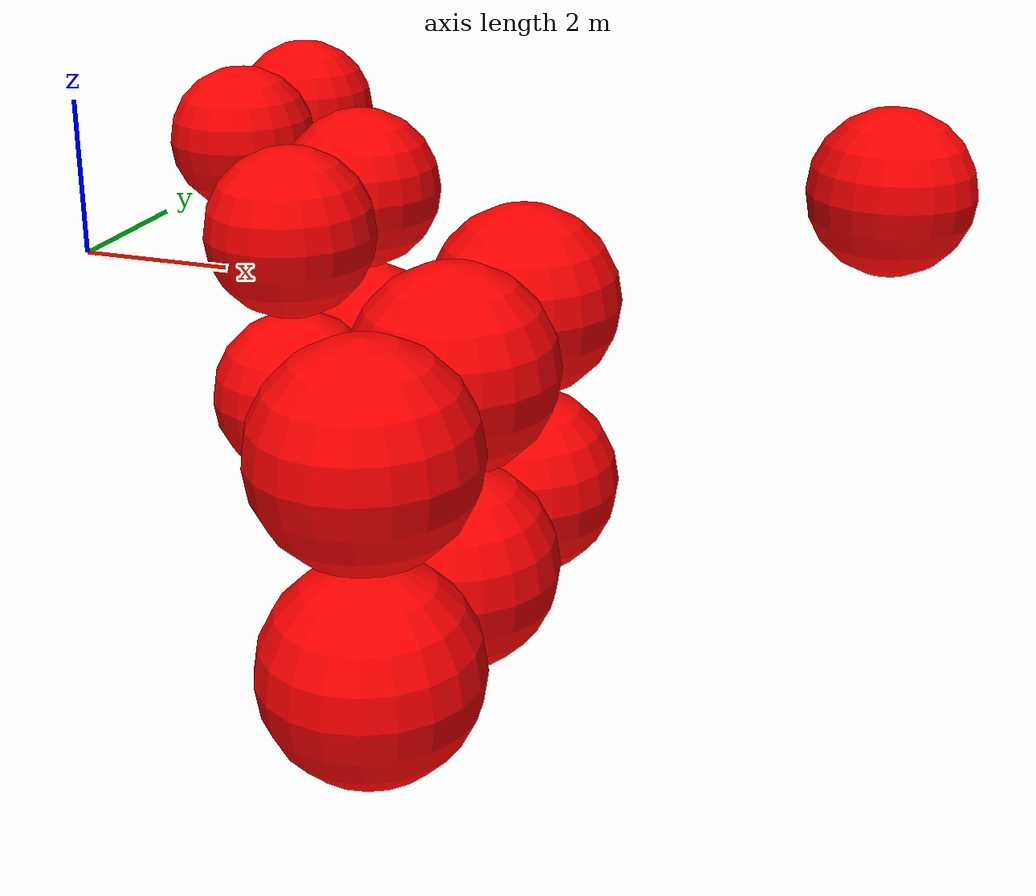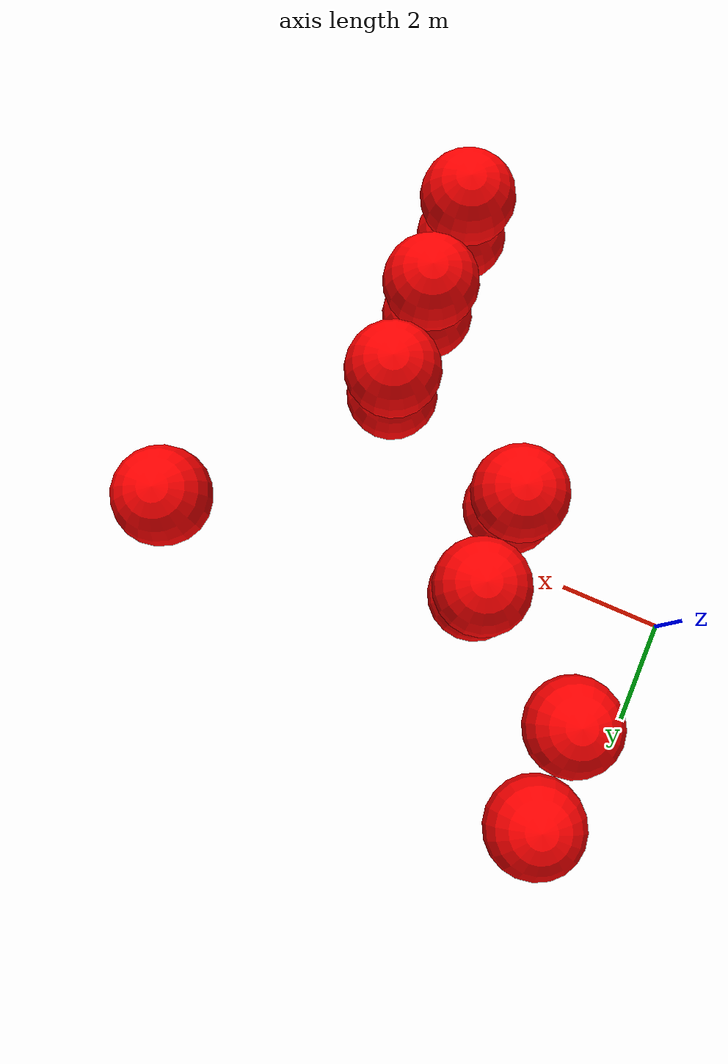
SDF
<sdf version="1.8">
 <world name="3d_world">
  <model name="obstacle_1" canonical_link="obstacle">
   <static>true</static>
   <pose relative_to="world">6.88 -6.63 -1.00 0 0 0</pose>
   <link name="obstacle">
    <pose relative_to="__model__">0.0 0 0.0 0 0 0</pose>
    <visual name="visual">
     <geometry><sphere><radius>1.00</radius></sphere></geometry>
     <material>
      <ambient>1.0 0.0 0.0 1</ambient>
      <diffuse>1.0 0.0 0.0 1</diffuse>
      <specular>1.0 0.0 0.0 1</specular>
     </material>
    </visual>
    <collision name="collision"><geometry><sphere><radius>1.00</radius></sphere></geometry></collision>
    <enable_gravity>false</enable_gravity>
   </link>
   <plugin filename="ignition-gazebo-velocity-control-system" name="ignition::gazebo::systems::VelocityControl">
    <initial_linear>0.00 0.00 0.00</initial_linear>
    <initial_angular>0 0 0</initial_angular>
   </plugin>
   <plugin filename="ignition-gazebo-odometry-publisher-system" name="ignition::gazebo::systems::OdometryPublisher">
    <dimensions>3</dimensions>
   </plugin>
  </model>
  <model name="obstacle_2" canonical_link="obstacle">
   <static>true</static>
   <pose relative_to="world">6.88 -4.63 -1.00 0 0 0</pose>
   <link name="obstacle">
    <pose relative_to="__model__">0.0 0 0.0 0 0 0</pose>
    <visual name="visual">
     <geometry><sphere><radius>1.00</radius></sphere></geometry>
     <material>
      <ambient>1.0 0.0 0.0 1</ambient>
      <diffuse>1.0 0.0 0.0 1</diffuse>
      <specular>1.0 0.0 0.0 1</specular>
     </material>
    </visual>
    <collision name="collision"><geometry><sphere><radius>1.00</radius></sphere></geometry></collision>
    <enable_gravity>false</enable_gravity>
   </link>
   <plugin filename="ignition-gazebo-velocity-control-system" name="ignition::gazebo::systems::VelocityControl">
    <initial_linear>0.00 0.00 0.00</initial_linear>
    <initial_angular>0 0 0</initial_angular>
   </plugin>
   <plugin filename="ignition-gazebo-odometry-publisher-system" name="ignition::gazebo::systems::OdometryPublisher">
    <dimensions>3</dimensions>
   </plugin>
  </model>
  <model name="obstacle_3" canonical_link="obstacle">
   <static>true</static>
   <pose relative_to="world">6.88 -2.63 -1.00 0 0 0</pose>
   <link name="obstacle">
    <pose relative_to="__model__">0.0 0 0.0 0 0 0</pose>
    <visual name="visual">
     <geometry><sphere><radius>1.00</radius></sphere></geometry>
     <material>
      <ambient>1.0 0.0 0.0 1</ambient>
      <diffuse>1.0 0.0 0.0 1</diffuse>
      <specular>1.0 0.0 0.0 1</specular>
     </material>
    </visual>
    <collision name="collision"><geometry><sphere><radius>1.00</radius></sphere></geometry></collision>
    <enable_gravity>false</enable_gravity>
   </link>
   <plugin filename="ignition-gazebo-velocity-control-system" name="ignition::gazebo::systems::VelocityControl">
    <initial_linear>0.00 0.00 0.00</initial_linear>
    <initial_angular>0 0 0</initial_angular>
   </plugin>
   <plugin filename="ignition-gazebo-odometry-publisher-system" name="ignition::gazebo::systems::OdometryPublisher">
    <dimensions>3</dimensions>
   </plugin>
  </model>
  <model name="obstacle_4" canonical_link="obstacle">
   <static>true</static>
   <pose relative_to="world">6.88 -6.63 1.00 0 0 0</pose>
   <link name="obstacle">
    <pose relative_to="__model__">0.0 0 0.0 0 0 0</pose>
    <visual name="visual">
     <geometry><sphere><radius>1.00</radius></sphere></geometry>
     <material>
      <ambient>1.0 0.0 0.0 1</ambient>
      <diffuse>1.0 0.0 0.0 1</diffuse>
      <specular>1.0 0.0 0.0 1</specular>
     </material>
    </visual>
    <collision name="collision"><geometry><sphere><radius>1.00</radius></sphere></geometry></collision>
    <enable_gravity>false</enable_gravity>
   </link>
   <plugin filename="ignition-gazebo-velocity-control-system" name="ignition::gazebo::systems::VelocityControl">
    <initial_linear>0.00 0.00 0.00</initial_linear>
    <initial_angular>0 0 0</initial_angular>
   </plugin>
   <plugin filename="ignition-gazebo-odometry-publisher-system" name="ignition::gazebo::systems::OdometryPublisher">
    <dimensions>3</dimensions>
   </plugin>
  </model>
  <model name="obstacle_5" canonical_link="obstacle">
   <static>true</static>
   <pose relative_to="world">6.88 -4.63 1.00 0 0 0</pose>
   <link name="obstacle">
    <pose relative_to="__model__">0.0 0 0.0 0 0 0</pose>
    <visual name="visual">
     <geometry><sphere><radius>1.00</radius></sphere></geometry>
     <material>
      <ambient>1.0 0.0 0.0 1</ambient>
      <diffuse>1.0 0.0 0.0 1</diffuse>
      <specular>1.0 0.0 0.0 1</specular>
     </material>
    </visual>
    <collision name="collision"><geometry><sphere><radius>1.00</radius></sphere></geometry></collision>
    <enable_gravity>false</enable_gravity>
   </link>
   <plugin filename="ignition-gazebo-velocity-control-system" name="ignition::gazebo::systems::VelocityControl">
    <initial_linear>0.00 0.00 0.00</initial_linear>
    <initial_angular>0 0 0</initial_angular>
   </plugin>
   <plugin filename="ignition-gazebo-odometry-publisher-system" name="ignition::gazebo::systems::OdometryPublisher">
    <dimensions>3</dimensions>
   </plugin>
  </model>
  <model name="obstacle_6" canonical_link="obstacle">
   <static>true</static>
   <pose relative_to="world">6.88 -2.63 1.00 0 0 0</pose>
   <link name="obstacle">
    <pose relative_to="__model__">0.0 0 0.0 0 0 0</pose>
    <visual name="visual">
     <geometry><sphere><radius>1.00</radius></sphere></geometry>
     <material>
      <ambient>1.0 0.0 0.0 1</ambient>
      <diffuse>1.0 0.0 0.0 1</diffuse>
      <specular>1.0 0.0 0.0 1</specular>
     </material>
    </visual>
    <collision name="collision"><geometry><sphere><radius>1.00</radius></sphere></geometry></collision>
    <enable_gravity>false</enable_gravity>
   </link>
   <plugin filename="ignition-gazebo-velocity-control-system" name="ignition::gazebo::systems::VelocityControl">
    <initial_linear>0.00 0.00 0.00</initial_linear>
    <initial_angular>0 0 0</initial_angular>
   </plugin>
   <plugin filename="ignition-gazebo-odometry-publisher-system" name="ignition::gazebo::systems::OdometryPublisher">
    <dimensions>3</dimensions>
   </plugin>
  </model>
  <model name="obstacle_9" canonical_link="obstacle">
   <static>true</static>
   <pose relative_to="world">0.98 2.54 1.00 0 0 0</pose>
   <link name="obstacle">
    <pose relative_to="__model__">0.0 0 0.0 0 0 0</pose>
    <visual name="visual">
     <geometry><sphere><radius>1.00</radius></sphere></geometry>
     <material>
      <ambient>1.0 0.0 0.0 1</ambient>
      <diffuse>1.0 0.0 0.0 1</diffuse>
      <specular>1.0 0.0 0.0 1</specular>
     </material>
    </visual>
    <collision name="collision"><geometry><sphere><radius>1.00</radius></sphere></geometry></collision>
    <enable_gravity>false</enable_gravity>
   </link>
   <plugin filename="ignition-gazebo-velocity-control-system" name="ignition::gazebo::systems::VelocityControl">
    <initial_linear>0.00 0.00 0.00</initial_linear>
    <initial_angular>0 0 0</initial_angular>
   </plugin>
   <plugin filename="ignition-gazebo-odometry-publisher-system" name="ignition::gazebo::systems::OdometryPublisher">
    <dimensions>3</dimensions>
   </plugin>
  </model>
  <model name="obstacle_10" canonical_link="obstacle">
   <static>true</static>
   <pose relative_to="world">0.98 4.54 1.00 0 0 0</pose>
   <link name="obstacle">
    <pose relative_to="__model__">0.0 0 0.0 0 0 0</pose>
    <visual name="visual">
     <geometry><sphere><radius>1.00</radius></sphere></geometry>
     <material>
      <ambient>1.0 0.0 0.0 1</ambient>
      <diffuse>1.0 0.0 0.0 1</diffuse>
      <specular>1.0 0.0 0.0 1</specular>
     </material>
    </visual>
    <collision name="collision"><geometry><sphere><radius>1.00</radius></sphere></geometry></collision>
    <enable_gravity>false</enable_gravity>
   </link>
   <plugin filename="ignition-gazebo-velocity-control-system" name="ignition::gazebo::systems::VelocityControl">
    <initial_linear>0.00 0.00 0.00</initial_linear>
    <initial_angular>0 0 0</initial_angular>
   </plugin>
   <plugin filename="ignition-gazebo-odometry-publisher-system" name="ignition::gazebo::systems::OdometryPublisher">
    <dimensions>3</dimensions>
   </plugin>
  </model>
  <model name="obstacle_19" canonical_link="obstacle">
   <static>true</static>
   <pose relative_to="world">3.58 -1.27 -1.00 0 0 0</pose>
   <link name="obstacle">
    <pose relative_to="__model__">0.0 0 0.0 0 0 0</pose>
    <visual name="visual">
     <geometry><sphere><radius>1.00</radius></sphere></geometry>
     <material>
      <ambient>1.0 0.0 0.0 1</ambient>
      <diffuse>1.0 0.0 0.0 1</diffuse>
      <specular>1.0 0.0 0.0 1</specular>
     </material>
    </visual>
    <collision name="collision"><geometry><sphere><radius>1.00</radius></sphere></geometry></collision>
    <enable_gravity>false</enable_gravity>
   </link>
   <plugin filename="ignition-gazebo-velocity-control-system" name="ignition::gazebo::systems::VelocityControl">
    <initial_linear>0.00 0.00 0.00</initial_linear>
    <initial_angular>0 0 0</initial_angular>
   </plugin>
   <plugin filename="ignition-gazebo-odometry-publisher-system" name="ignition::gazebo::systems::OdometryPublisher">
    <dimensions>3</dimensions>
   </plugin>
  </model>
  <model name="obstacle_20" canonical_link="obstacle">
   <static>true</static>
   <pose relative_to="world">3.58 0.73 -1.00 0 0 0</pose>
   <link name="obstacle">
    <pose relative_to="__model__">0.0 0 0.0 0 0 0</pose>
    <visual name="visual">
     <geometry><sphere><radius>1.00</radius></sphere></geometry>
     <material>
      <ambient>1.0 0.0 0.0 1</ambient>
      <diffuse>1.0 0.0 0.0 1</diffuse>
      <specular>1.0 0.0 0.0 1</specular>
     </material>
    </visual>
    <collision name="collision"><geometry><sphere><radius>1.00</radius></sphere></geometry></collision>
    <enable_gravity>false</enable_gravity>
   </link>
   <plugin filename="ignition-gazebo-velocity-control-system" name="ignition::gazebo::systems::VelocityControl">
    <initial_linear>0.00 0.00 0.00</initial_linear>
    <initial_angular>0 0 0</initial_angular>
   </plugin>
   <plugin filename="ignition-gazebo-odometry-publisher-system" name="ignition::gazebo::systems::OdometryPublisher">
    <dimensions>3</dimensions>
   </plugin>
  </model>
  <model name="obstacle_21" canonical_link="obstacle">
   <static>true</static>
   <pose relative_to="world">3.58 -1.27 1.00 0 0 0</pose>
   <link name="obstacle">
    <pose relative_to="__model__">0.0 0 0.0 0 0 0</pose>
    <visual name="visual">
     <geometry><sphere><radius>1.00</radius></sphere></geometry>
     <material>
      <ambient>1.0 0.0 0.0 1</ambient>
      <diffuse>1.0 0.0 0.0 1</diffuse>
      <specular>1.0 0.0 0.0 1</specular>
     </material>
    </visual>
    <collision name="collision"><geometry><sphere><radius>1.00</radius></sphere></geometry></collision>
    <enable_gravity>false</enable_gravity>
   </link>
   <plugin filename="ignition-gazebo-velocity-control-system" name="ignition::gazebo::systems::VelocityControl">
    <initial_linear>0.00 0.00 0.00</initial_linear>
    <initial_angular>0 0 0</initial_angular>
   </plugin>
   <plugin filename="ignition-gazebo-odometry-publisher-system" name="ignition::gazebo::systems::OdometryPublisher">
    <dimensions>3</dimensions>
   </plugin>
  </model>
  <model name="obstacle_22" canonical_link="obstacle">
   <static>true</static>
   <pose relative_to="world">3.58 0.73 1.00 0 0 0</pose>
   <link name="obstacle">
    <pose relative_to="__model__">0.0 0 0.0 0 0 0</pose>
    <visual name="visual">
     <geometry><sphere><radius>1.00</radius></sphere></geometry>
     <material>
      <ambient>1.0 0.0 0.0 1</ambient>
      <diffuse>1.0 0.0 0.0 1</diffuse>
      <specular>1.0 0.0 0.0 1</specular>
     </material>
    </visual>
    <collision name="collision"><geometry><sphere><radius>1.00</radius></sphere></geometry></collision>
    <enable_gravity>false</enable_gravity>
   </link>
   <plugin filename="ignition-gazebo-velocity-control-system" name="ignition::gazebo::systems::VelocityControl">
    <initial_linear>0.00 0.00 0.00</initial_linear>
    <initial_angular>0 0 0</initial_angular>
   </plugin>
   <plugin filename="ignition-gazebo-odometry-publisher-system" name="ignition::gazebo::systems::OdometryPublisher">
    <dimensions>3</dimensions>
   </plugin>
  </model>
  <model name="obstacle_25" canonical_link="obstacle">
   <static>false</static>
   <pose relative_to="world">10.00 1.55 1.31 0 0 0</pose>
   <link name="obstacle">
    <pose relative_to="__model__">0.0 0 0.0 0 0 0</pose>
    <visual name="visual">
     <geometry><sphere><radius>1.00</radius></sphere></geometry>
     <material>
      <ambient>1.0 0.0 0.0 1</ambient>
      <diffuse>1.0 0.0 0.0 1</diffuse>
      <specular>1.0 0.0 0.0 1</specular>
     </material>
    </visual>
    <collision name="collision"><geometry><sphere><radius>1.00</radius></sphere></geometry></collision>
    <enable_gravity>false</enable_gravity>
   </link>
   <plugin filename="ignition-gazebo-velocity-control-system" name="ignition::gazebo::systems::VelocityControl">
    <initial_linear>0.00 -0.47 -0.46</initial_linear>
    <initial_angular>0 0 0</initial_angular>
   </plugin>
   <plugin filename="ignition-gazebo-odometry-publisher-system" name="ignition::gazebo::systems::OdometryPublisher">
    <dimensions>3</dimensions>
   </plugin>
  </model>
 </world>
</sdf>
